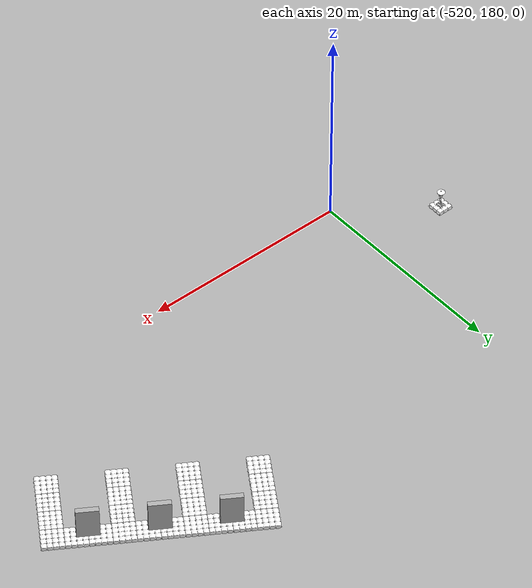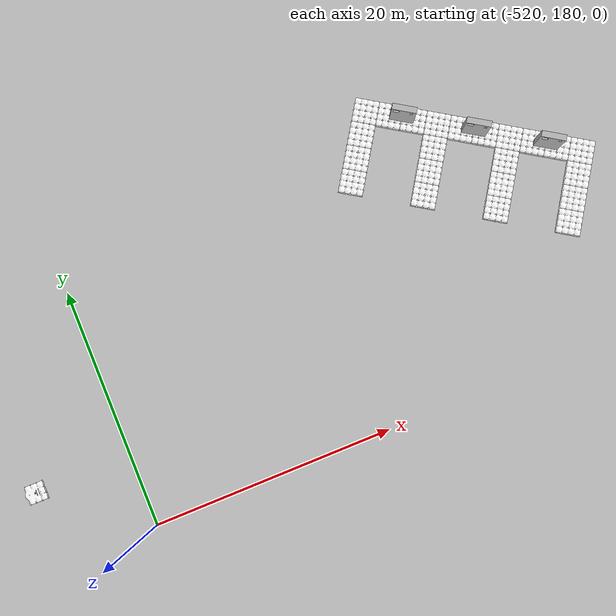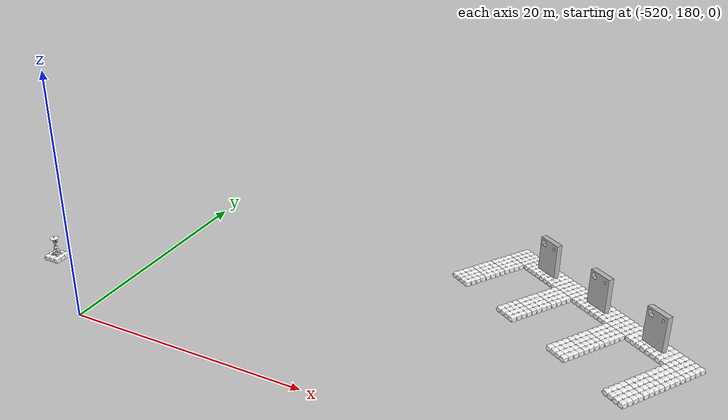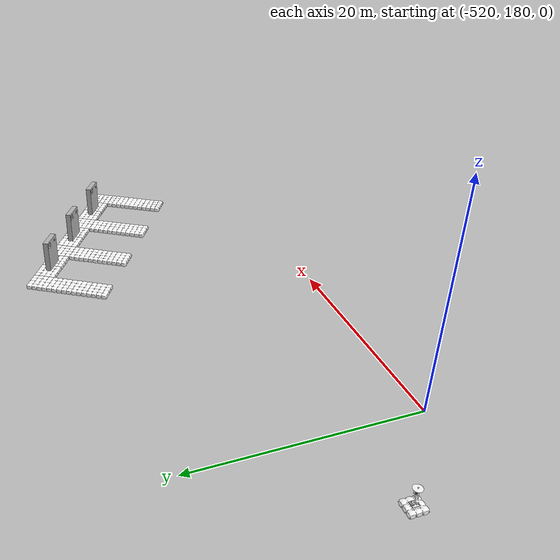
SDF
<sdf version="1.9">
 <world name="scan_dock_deliver_task">
  <physics name="4ms" type="dart">
   <max_step_size>0.004</max_step_size>
   <real_time_factor>1.0</real_time_factor>
  </physics>
  <plugin filename="gz-sim-physics-system" name="gz::sim::systems::Physics"/>
  <plugin filename="gz-sim-user-commands-system" name="gz::sim::systems::UserCommands"/>
  <plugin filename="gz-sim-sensors-system" name="gz::sim::systems::Sensors">
   <render_engine>ogre2</render_engine>
   <disable_on_drained_battery>true</disable_on_drained_battery>
  </plugin>
  <plugin filename="gz-sim-imu-system" name="gz::sim::systems::Imu"/>
  <plugin filename="gz-sim-magnetometer-system" name="gz::sim::systems::Magnetometer"/>
  <plugin filename="gz-sim-forcetorque-system" name="gz::sim::systems::ForceTorque"/>
  <plugin filename="gz-sim-particle-emitter-system" name="gz::sim::systems::ParticleEmitter"/>
  <plugin filename="gz-sim-scene-broadcaster-system" name="gz::sim::systems::SceneBroadcaster"/>
  <plugin filename="gz-sim-contact-system" name="gz::sim::systems::Contact"/>
  <plugin filename="gz-sim-navsat-system" name="gz::sim::systems::NavSat"/>
  <scene><grid>false</grid><ambient>1.0 1.0 1.0</ambient><background>0.8 0.8 0.8</background></scene>
  <spherical_coordinates>
   <surface_model>EARTH_WGS84</surface_model>
   <world_frame_orientation>ENU</world_frame_orientation>
   <latitude_deg>-33.724223</latitude_deg>
   <longitude_deg>150.679736</longitude_deg>
   <elevation>0.0</elevation>
   <heading_deg>0.0</heading_deg>
  </spherical_coordinates>
  <light type="directional" name="sun">
   <pose>0 0 10 0 0 0</pose>
   <diffuse>0.8 0.8 0.8 1</diffuse>
   <specular>0.2 0.2 0.2 1</specular>
   <attenuation>
    <range>1000</range>
    <constant>0.9</constant>
    <linear>0.01</linear>
    <quadratic>0.001</quadratic>
   </attenuation>
   <direction>-0.5 0.1 -0.9</direction>
  </light>
  <include><name>platform</name><uri>platform</uri></include>
  <include>
   <name>robotx_light_buoy_rgb</name>
   <pose>-528 186 0.32 0 0 0</pose>
   <uri>robotx_light_buoy_rgb</uri>
   <plugin name="vrx::PolyhedraBuoyancyDrag" filename="libPolyhedraBuoyancyDrag.so">
    <fluid_density>1000</fluid_density>
    <fluid_level>0.0</fluid_level>
    <linear_drag>1000.0</linear_drag>
    <angular_drag>200.0</angular_drag>
    <buoyancy name="buoyancy_base">
     <link_name>base_link</link_name>
     <pose>0 0 -0.1 0 0 0</pose>
     <geometry><box><size>1.5 1.5 0.4</size></box></geometry>
    </buoyancy>
    <buoyancy name="buoyancy_body">
     <link_name>base_link</link_name>
     <pose>0 0 0.8 0 0 0</pose>
     <geometry><cylinder><radius>0.2</radius><length>0.15</length></cylinder></geometry>
    </buoyancy>
    <wavefield><topic>/vrx/wavefield/parameters</topic></wavefield>
   </plugin>
  </include>
  <plugin name="gz::sim" filename="dummy">
   <performer name="perf_blue_projectile">
    <ref>blue_projectile</ref>
    <geometry><box><size>0.057 0.057 0.057</size></box></geometry>
   </performer>
  </plugin>
  <plugin filename="libUSVWind.so" name="vrx::USVWind">
   <wind_obj>
    <name>wamv</name>
    <link_name>wamv/base_link</link_name>
    <coeff_vector>.5 .5 .33</coeff_vector>
   </wind_obj>
   <wind_direction>240</wind_direction>
   <wind_mean_velocity>0.0</wind_mean_velocity>
   <var_wind_gain_constants>0</var_wind_gain_constants>
   <var_wind_time_constants>2</var_wind_time_constants>
   <random_seed>10</random_seed>
   <update_rate>10</update_rate>
   <topic_wind_speed>/vrx/debug/wind/speed</topic_wind_speed>
   <topic_wind_direction>/vrx/debug/wind/direction</topic_wind_direction>
  </plugin>
  <include><uri>dock_2022</uri><pose>-480 190 0 0 0 1.0</pose></include>
  <plugin filename="libScanDockScoringPlugin.so" name="vrx::ScanDockScoringPlugin">
   <vehicle>wamv</vehicle>
   <task_name>scan_dock_deliver</task_name>
   <task_info_topic>/vrx/task/info</task_info_topic>
   <initial_state_duration>10</initial_state_duration>
   <ready_state_duration>10</ready_state_duration>
   <running_state_duration>300</running_state_duration>
   <release_topic>/vrx/release</release_topic>
   <color_sequence_topic>/vrx/scan_dock_deliver/color_sequence</color_sequence_topic>
   <color_1>red</color_1>
   <color_2>green</color_2>
   <color_3>blue</color_3>
   <dock_bonus_points>15</dock_bonus_points>
   <correct_dock_bonus_points>5</correct_dock_bonus_points>
   <bays>
    <bay>
     <name>bay1</name>
     <internal_activation_topic>/vrx/dock_2022/bay_1/contain</internal_activation_topic>
     <external_activation_topic>/vrx/dock_2022/bay_1_external/contain</external_activation_topic>
     <symbol_topic>/vrx/dock_2022_placard1/symbol</symbol_topic>
     <min_dock_time>10.0</min_dock_time>
     <correct_dock>False</correct_dock>
     <symbol>red_rectangle</symbol>
    </bay>
    <bay>
     <name>bay2</name>
     <internal_activation_topic>/vrx/dock_2022/bay_2/contain</internal_activation_topic>
     <external_activation_topic>/vrx/dock_2022/bay_2_external/contain</external_activation_topic>
     <symbol_topic>/vrx/dock_2022_placard2/symbol</symbol_topic>
     <min_dock_time>10.0</min_dock_time>
     <correct_dock>True</correct_dock>
     <symbol>blue_triangle</symbol>
    </bay>
    <bay>
     <name>bay3</name>
     <internal_activation_topic>/vrx/dock_2022/bay_3/contain</internal_activation_topic>
     <external_activation_topic>/vrx/dock_2022/bay_3_external/contain</external_activation_topic>
     <symbol_topic>/vrx/dock_2022_placard3/symbol</symbol_topic>
     <min_dock_time>10.0</min_dock_time>
     <correct_dock>False</correct_dock>
     <symbol>yellow_circle</symbol>
    </bay>
   </bays>
   <targets>
    <target><topic>/vrx/dock_2022_placard1_big_hole/contain</topic><bonus_points>5</bonus_points></target>
    <target><topic>/vrx/dock_2022_placard1_small_hole/contain</topic><bonus_points>10</bonus_points></target>
    <target><topic>/vrx/dock_2022_placard2_big_hole/contain</topic><bonus_points>5</bonus_points></target>
    <target><topic>/vrx/dock_2022_placard2_small_hole/contain</topic><bonus_points>10</bonus_points></target>
    <target><topic>/vrx/dock_2022_placard3_big_hole/contain</topic><bonus_points>5</bonus_points></target>
    <target><topic>/vrx/dock_2022_placard3_small_hole/contain</topic><bonus_points>10</bonus_points></target>
   </targets>
  </plugin>
  <plugin filename="libPublisherPlugin.so" name="vrx::PublisherPlugin">
   <message type="gz.msgs.Param" topic="/vrx/wavefield/parameters" every="2.0">params {
          key: "direction"
          value {
            type: DOUBLE
            double_value: 0.0
          }
        }
        params {
          key: "gain"
          value {
            type: DOUBLE
            double_value: 0.3
          }
        }
        params {
          key: "period"
          value {
            type: DOUBLE
            double_value: 5
          }
        }
        params {
          key: "steepness"
          value {
            type: DOUBLE
            double_value: 0
          }
        }</message>
  </plugin>
 </world>
</sdf>
